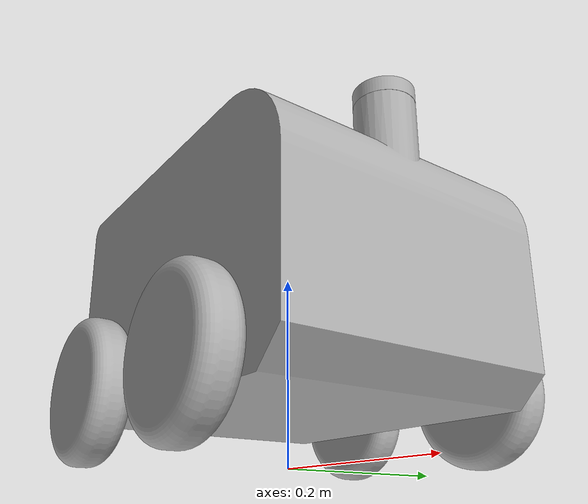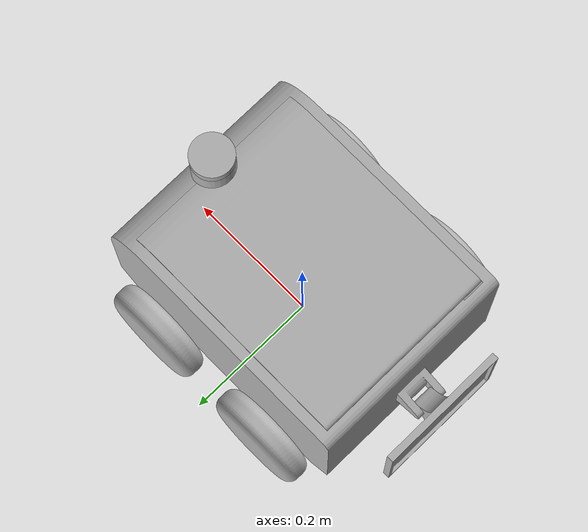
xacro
<?xml version="1.0" ?>
<robot name="usher_v3" xmlns:xacro="http://www.ros.org/wiki/xacro">

<xacro:include filename="$(find usher_v3_description)/urdf/materials.xacro" />
<xacro:include filename="$(find usher_v3_description)/urdf/usher_v3.trans" />
<xacro:include filename="$(find usher_v3_description)/urdf/usher_v3.gazebo" />
<link name="base_link">
  <inertial>
    <origin xyz="0.011566709574535084 1.4134803774861009e-05 0.13302990352792646" rpy="0 0 0"/>
    <mass value="16.97796238405781"/>
    <inertia ixx="0.210901" iyy="0.330293" izz="0.40742" ixy="-3.6e-05" iyz="-2.1e-05" ixz="-0.016273"/>
  </inertial>
  <visual>
    <origin xyz="0 0 0" rpy="0 0 0"/>
    <geometry>
      <mesh filename="package://usher_v3_description/meshes/base_link.stl" scale="0.001 0.001 0.001"/>
    </geometry>
    <material name="silver"/>
  </visual>
  <collision>
    <origin xyz="0 0 0" rpy="0 0 0"/>
    <geometry>
      <mesh filename="package://usher_v3_description/meshes/base_link.stl" scale="0.001 0.001 0.001"/>
    </geometry>
  </collision>
</link>

<link name="fl_1">
  <inertial>
    <origin xyz="-4.163336342344337e-17 0.010071373681388995 2.7755575615628914e-17" rpy="0 0 0"/>
    <mass value="0.6140248991605866"/>
    <inertia ixx="0.000896" iyy="0.00164" izz="0.000896" ixy="0.0" iyz="0.0" ixz="0.0"/>
  </inertial>
  <visual>
    <origin xyz="-0.1 -0.165 -0.075" rpy="0 0 0"/>
    <geometry>
      <mesh filename="package://usher_v3_description/meshes/fl_1.stl" scale="0.001 0.001 0.001"/>
    </geometry>
    <material name="silver"/>
  </visual>
  <collision>
    <origin xyz="-0.1 -0.165 -0.075" rpy="0 0 0"/>
    <geometry>
      <mesh filename="package://usher_v3_description/meshes/fl_1.stl" scale="0.001 0.001 0.001"/>
    </geometry>
  </collision>
</link>

<link name="rl_1">
  <inertial>
    <origin xyz="0.0 0.010071373681388912 2.7755575615628914e-17" rpy="0 0 0"/>
    <mass value="0.6140248991605861"/>
    <inertia ixx="0.000896" iyy="0.00164" izz="0.000896" ixy="0.0" iyz="-0.0" ixz="0.0"/>
  </inertial>
  <visual>
    <origin xyz="0.1 -0.165 -0.075" rpy="0 0 0"/>
    <geometry>
      <mesh filename="package://usher_v3_description/meshes/rl_1.stl" scale="0.001 0.001 0.001"/>
    </geometry>
    <material name="silver"/>
  </visual>
  <collision>
    <origin xyz="0.1 -0.165 -0.075" rpy="0 0 0"/>
    <geometry>
      <mesh filename="package://usher_v3_description/meshes/rl_1.stl" scale="0.001 0.001 0.001"/>
    </geometry>
  </collision>
</link>

<link name="rr_1">
  <inertial>
    <origin xyz="-1.983135877736686e-14 -0.010071373681388912 1.3877787807814457e-17" rpy="0 0 0"/>
    <mass value="0.614024899160586"/>
    <inertia ixx="0.000896" iyy="0.00164" izz="0.000896" ixy="-0.0" iyz="0.0" ixz="-0.0"/>
  </inertial>
  <visual>
    <origin xyz="0.1 0.165 -0.075" rpy="0 0 0"/>
    <geometry>
      <mesh filename="package://usher_v3_description/meshes/rr_1.stl" scale="0.001 0.001 0.001"/>
    </geometry>
    <material name="silver"/>
  </visual>
  <collision>
    <origin xyz="0.1 0.165 -0.075" rpy="0 0 0"/>
    <geometry>
      <mesh filename="package://usher_v3_description/meshes/rr_1.stl" scale="0.001 0.001 0.001"/>
    </geometry>
  </collision>
</link>

<link name="fr_1">
  <inertial>
    <origin xyz="1.990074771640593e-14 -0.010071373681388884 1.3877787807814457e-17" rpy="0 0 0"/>
    <mass value="0.6140248991605857"/>
    <inertia ixx="0.000896" iyy="0.00164" izz="0.000896" ixy="0.0" iyz="-0.0" ixz="0.0"/>
  </inertial>
  <visual>
    <origin xyz="-0.1 0.165 -0.075" rpy="0 0 0"/>
    <geometry>
      <mesh filename="package://usher_v3_description/meshes/fr_1.stl" scale="0.001 0.001 0.001"/>
    </geometry>
    <material name="silver"/>
  </visual>
  <collision>
    <origin xyz="-0.1 0.165 -0.075" rpy="0 0 0"/>
    <geometry>
      <mesh filename="package://usher_v3_description/meshes/fr_1.stl" scale="0.001 0.001 0.001"/>
    </geometry>
  </collision>
</link>

<link name="lidar_1">
  <inertial>
    <origin xyz="-2.7755575615628914e-17 4.0208493750847426e-17 0.007500000000000007" rpy="0 0 0"/>
    <mass value="0.33293028146417825"/>
    <inertia ixx="8.1e-05" iyy="8.1e-05" izz="0.00015" ixy="0.0" iyz="-0.0" ixz="0.0"/>
  </inertial>
  <visual>
    <origin xyz="-0.16 -0.0 -0.33" rpy="0 0 0"/>
    <geometry>
      <mesh filename="package://usher_v3_description/meshes/lidar_1.stl" scale="0.001 0.001 0.001"/>
    </geometry>
    <material name="silver"/>
  </visual>
  <collision>
    <origin xyz="-0.16 -0.0 -0.33" rpy="0 0 0"/>
    <geometry>
      <mesh filename="package://usher_v3_description/meshes/lidar_1.stl" scale="0.001 0.001 0.001"/>
    </geometry>
  </collision>
</link>

<link name="lid_1">
  <inertial>
    <origin xyz="0.13430834902086913 0.14500000769652893 0.004664752820842999" rpy="0 0 0"/>
    <mass value="0.2818838252343565"/>
    <inertia ixx="0.00175" iyy="0.003212" izz="0.004957" ixy="-0.0" iyz="0.0" ixz="-2.9e-05"/>
  </inertial>
  <visual>
    <origin xyz="0.175 0.145 -0.295" rpy="0 0 0"/>
    <geometry>
      <mesh filename="package://usher_v3_description/meshes/lid_1.stl" scale="0.001 0.001 0.001"/>
    </geometry>
    <material name="silver"/>
  </visual>
  <collision>
    <origin xyz="0.175 0.145 -0.295" rpy="0 0 0"/>
    <geometry>
      <mesh filename="package://usher_v3_description/meshes/lid_1.stl" scale="0.001 0.001 0.001"/>
    </geometry>
  </collision>
</link>

<link name="screen_1">
  <inertial>
    <origin xyz="-0.02086897165600851 0.015000000000000062 -0.041453569256540174" rpy="0 0 0"/>
    <mass value="1.439651294165214"/>
    <inertia ixx="0.00611" iyy="0.002336" izz="0.003871" ixy="-0.0" iyz="-0.0" ixz="-4.4e-05"/>
  </inertial>
  <visual>
    <origin xyz="0.23 0.015 -0.200691" rpy="0 0 0"/>
    <geometry>
      <mesh filename="package://usher_v3_description/meshes/screen_1.stl" scale="0.001 0.001 0.001"/>
    </geometry>
    <material name="silver"/>
  </visual>
  <collision>
    <origin xyz="0.23 0.015 -0.200691" rpy="0 0 0"/>
    <geometry>
      <mesh filename="package://usher_v3_description/meshes/screen_1.stl" scale="0.001 0.001 0.001"/>
    </geometry>
  </collision>
</link>

<joint name="flj" type="continuous">
  <origin xyz="0.1 0.165 0.075" rpy="0 0 0"/>
  <parent link="base_link"/>
  <child link="fl_1"/>
  <axis xyz="0.0 1.0 0.0"/>
</joint>

<joint name="rlj" type="continuous">
  <origin xyz="-0.1 0.165 0.075" rpy="0 0 0"/>
  <parent link="base_link"/>
  <child link="rl_1"/>
  <axis xyz="0.0 1.0 0.0"/>
</joint>

<joint name="rrj" type="continuous">
  <origin xyz="-0.1 -0.165 0.075" rpy="0 0 0"/>
  <parent link="base_link"/>
  <child link="rr_1"/>
  <axis xyz="0.0 1.0 0.0"/>
</joint>

<joint name="frj" type="continuous">
  <origin xyz="0.1 -0.165 0.075" rpy="0 0 0"/>
  <parent link="base_link"/>
  <child link="fr_1"/>
  <axis xyz="0.0 1.0 0.0"/>
</joint>

<joint name="ldj" type="fixed">
  <origin xyz="0.16 0.0 0.33" rpy="0 0 0"/>
  <parent link="base_link"/>
  <child link="lidar_1"/>
</joint>

<joint name="lidj" type="revolute">
  <origin xyz="-0.175 -0.145 0.295" rpy="0 0 0"/>
  <parent link="base_link"/>
  <child link="lid_1"/>
  <axis xyz="0.0 -1.0 0.0"/>
  <limit upper="1.570796" lower="0.0" effort="100" velocity="100"/>
</joint>

<joint name="scrj" type="fixed">
  <origin xyz="-0.23 -0.015 0.200691" rpy="0 0 0"/>
  <parent link="base_link"/>
  <child link="screen_1"/>
  <axis xyz="0.0 1.0 0.0"/>
  <!--limit upper="0.872665" lower="0.0" effort="100" velocity="100" /!-->
</joint>

</robot>

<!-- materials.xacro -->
<robot name="usher_v3" xmlns:xacro="http://www.ros.org/wiki/xacro" >

<material name="silver">
  <color rgba="0.700 0.700 0.700 1.000"/>
</material>

</robot>
